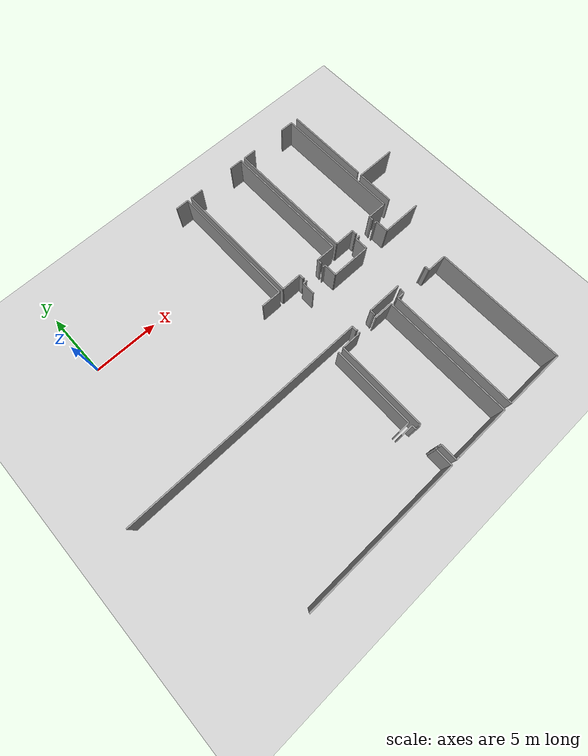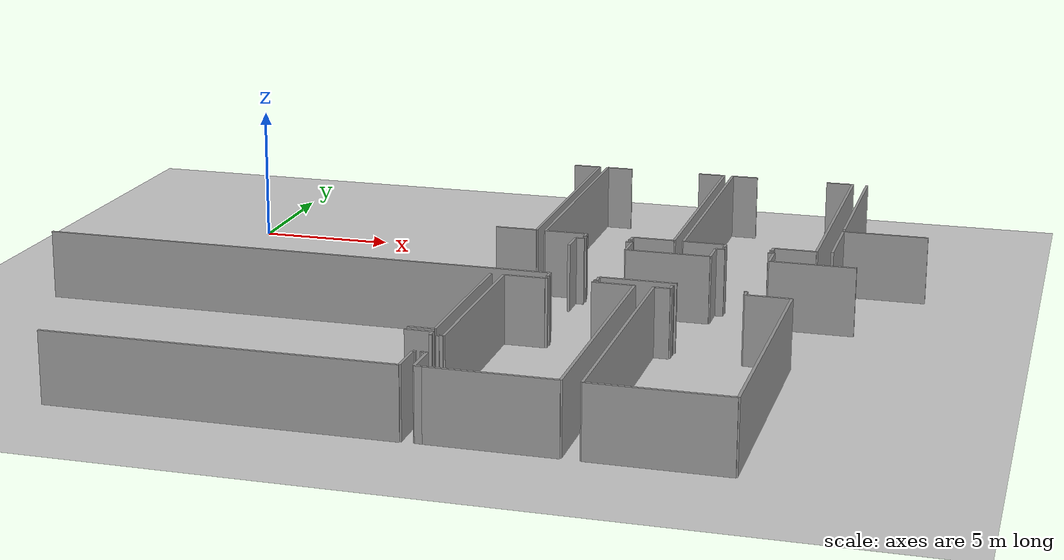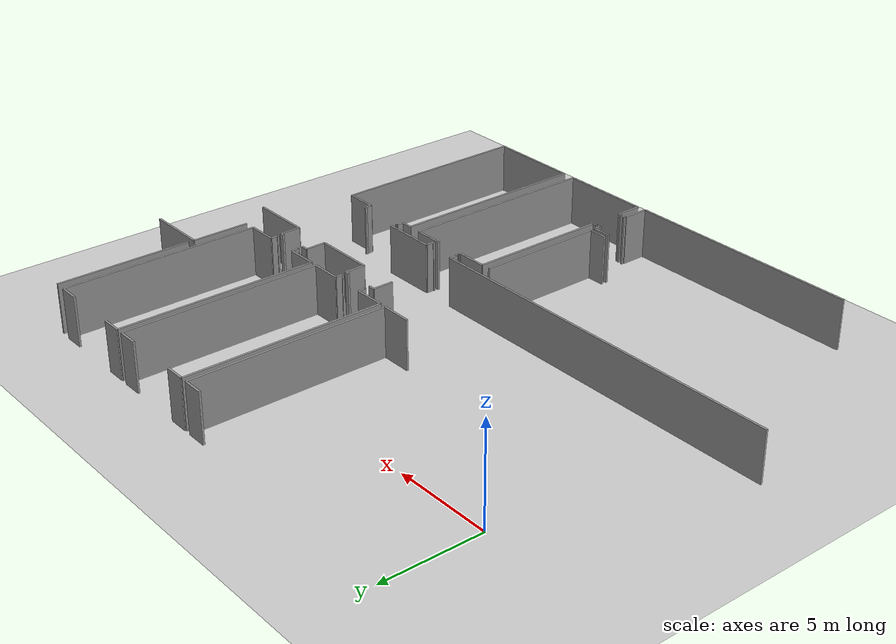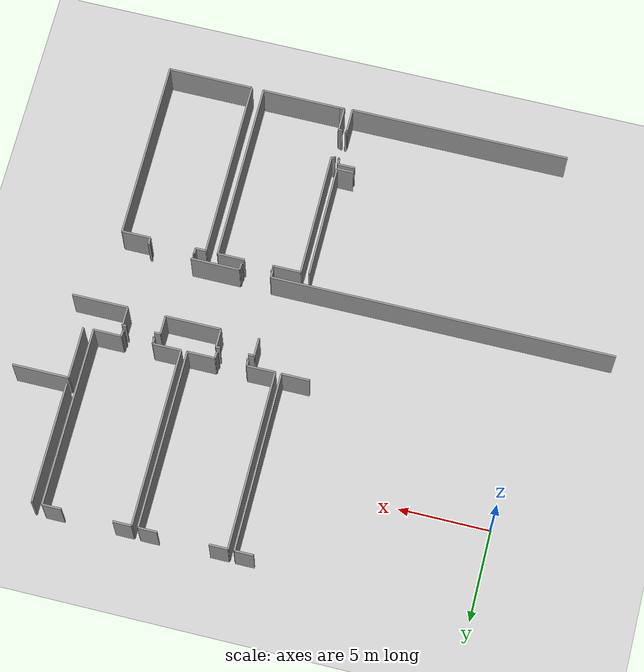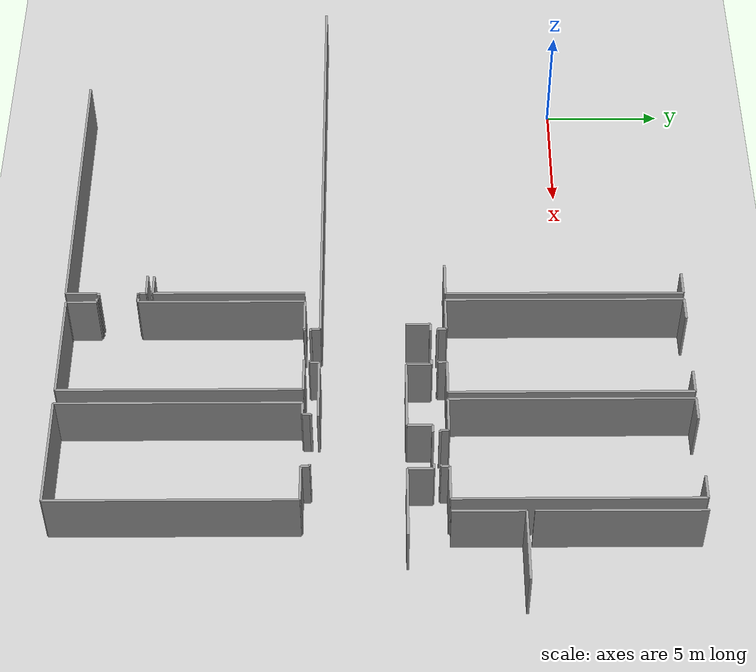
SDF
<sdf version="1.6">
 <world name="default">
  <model name="ground_plane">
   <static>1</static>
   <link name="link">
    <collision name="collision">
     <geometry><plane><normal>0 0 1</normal><size>100 100</size></plane></geometry>
     <surface><friction><ode><mu>100</mu><mu2>50</mu2></ode></friction></surface>
    </collision>
    <visual name="visual">
     <cast_shadows>0</cast_shadows>
     <geometry><plane><normal>0 0 1</normal><size>100 100</size></plane></geometry>
     <material>
      <script><uri>file://media/materials/scripts/gazebo.material</uri><name>Gazebo/Grey</name></script>
     </material>
    </visual>
   </link>
  </model>
  <model name="50055638">
   <static>1</static>
   <link name="Wall_262">
    <collision name="Wall_262_Collision">
     <geometry><box><size>1.01767296437 0.1 2.5</size></box></geometry>
     <pose>0.508836482184 0 1.25 0 0 0</pose>
    </collision>
    <visual name="Wall_262_Visual">
     <pose>0.508836482184 0 1.25 0 0 0</pose>
     <geometry><box><size>1.01767296437 0.1 2.5</size></box></geometry>
     <material>
      <script><uri>file://media/materials/scripts/gazebo.material</uri><name>Gazebo/Grey</name></script>
      <ambient>1 1 1 1</ambient>
     </material>
    </visual>
    <pose>84.9002599152 -27.5981036992 0 0 0 1.57079632679</pose>
   </link>
   <link name="Wall_263">
    <collision name="Wall_263_Collision">
     <geometry><box><size>0.328293901207 0.1 2.5</size></box></geometry>
     <pose>0.164146950603 0 1.25 0 0 0</pose>
    </collision>
    <visual name="Wall_263_Visual">
     <pose>0.164146950603 0 1.25 0 0 0</pose>
     <geometry><box><size>0.328293901207 0.1 2.5</size></box></geometry>
     <material>
      <script><uri>file://media/materials/scripts/gazebo.material</uri><name>Gazebo/Grey</name></script>
      <ambient>1 1 1 1</ambient>
     </material>
    </visual>
    <pose>84.9002599152 -26.5804307348 0 0 0 0.0</pose>
   </link>
   <link name="Wall_264">
    <collision name="Wall_264_Collision">
     <geometry><box><size>0.225344594208 0.1 2.5</size></box></geometry>
     <pose>0.112672297104 0 1.25 0 0 0</pose>
    </collision>
    <visual name="Wall_264_Visual">
     <pose>0.112672297104 0 1.25 0 0 0</pose>
     <geometry><box><size>0.225344594208 0.1 2.5</size></box></geometry>
     <material>
      <script><uri>file://media/materials/scripts/gazebo.material</uri><name>Gazebo/Grey</name></script>
      <ambient>1 1 1 1</ambient>
     </material>
    </visual>
    <pose>86.7694888758 -26.5804307348 0 0 0 0.0</pose>
   </link>
   <link name="Wall_265">
    <collision name="Wall_265_Collision">
     <geometry><box><size>1.02212139121 0.1 2.5</size></box></geometry>
     <pose>0.511060695607 0 1.25 0 0 0</pose>
    </collision>
    <visual name="Wall_265_Visual">
     <pose>0.511060695607 0 1.25 0 0 0</pose>
     <geometry><box><size>1.02212139121 0.1 2.5</size></box></geometry>
     <material>
      <script><uri>file://media/materials/scripts/gazebo.material</uri><name>Gazebo/Grey</name></script>
      <ambient>1 1 1 1</ambient>
     </material>
    </visual>
    <pose>86.99483347 -26.5804307348 0 0 0 -1.57079632679</pose>
   </link>
   <link name="Wall_266">
    <collision name="Wall_266_Collision">
     <geometry><box><size>3.04920595581 0.1 2.5</size></box></geometry>
     <pose>1.5246029779 0 1.25 0 0 0</pose>
    </collision>
    <visual name="Wall_266_Visual">
     <pose>1.5246029779 0 1.25 0 0 0</pose>
     <geometry><box><size>3.04920595581 0.1 2.5</size></box></geometry>
     <material>
      <script><uri>file://media/materials/scripts/gazebo.material</uri><name>Gazebo/Grey</name></script>
      <ambient>1 1 1 1</ambient>
     </material>
    </visual>
    <pose>86.99483347 -27.602552126 0 0 0 0.0</pose>
   </link>
   <link name="Wall_267">
    <collision name="Wall_267_Collision">
     <geometry><box><size>1.02606142642 0.1 2.5</size></box></geometry>
     <pose>0.51303071321 0 1.25 0 0 0</pose>
    </collision>
    <visual name="Wall_267_Visual">
     <pose>0.51303071321 0 1.25 0 0 0</pose>
     <geometry><box><size>1.02606142642 0.1 2.5</size></box></geometry>
     <material>
      <script><uri>file://media/materials/scripts/gazebo.material</uri><name>Gazebo/Grey</name></script>
      <ambient>1 1 1 1</ambient>
     </material>
    </visual>
    <pose>90.0440394258 -27.602552126 0 0 0 1.57079632679</pose>
   </link>
   <link name="Wall_268">
    <collision name="Wall_268_Collision">
     <geometry><box><size>0.339097223546 0.1 2.5</size></box></geometry>
     <pose>0.169548611773 0 1.25 0 0 0</pose>
    </collision>
    <visual name="Wall_268_Visual">
     <pose>0.169548611773 0 1.25 0 0 0</pose>
     <geometry><box><size>0.339097223546 0.1 2.5</size></box></geometry>
     <material>
      <script><uri>file://media/materials/scripts/gazebo.material</uri><name>Gazebo/Grey</name></script>
      <ambient>1 1 1 1</ambient>
     </material>
    </visual>
    <pose>90.0440394258 -26.5764906996 0 0 0 0.0</pose>
   </link>
   <link name="Wall_269">
    <collision name="Wall_269_Collision">
     <geometry><box><size>0.21301609695 0.1 2.5</size></box></geometry>
     <pose>0.106508048475 0 1.25 0 0 0</pose>
    </collision>
    <visual name="Wall_269_Visual">
     <pose>0.106508048475 0 1.25 0 0 0</pose>
     <geometry><box><size>0.21301609695 0.1 2.5</size></box></geometry>
     <material>
      <script><uri>file://media/materials/scripts/gazebo.material</uri><name>Gazebo/Grey</name></script>
      <ambient>1 1 1 1</ambient>
     </material>
    </visual>
    <pose>91.9240717086 -26.5764906996 0 0 0 0.0</pose>
   </link>
   <link name="Wall_270">
    <collision name="Wall_270_Collision">
     <geometry><box><size>1.03241632191 0.1 2.5</size></box></geometry>
     <pose>0.516208160957 0 1.25 0 0 0</pose>
    </collision>
    <visual name="Wall_270_Visual">
     <pose>0.516208160957 0 1.25 0 0 0</pose>
     <geometry><box><size>1.03241632191 0.1 2.5</size></box></geometry>
     <material>
      <script><uri>file://media/materials/scripts/gazebo.material</uri><name>Gazebo/Grey</name></script>
      <ambient>1 1 1 1</ambient>
     </material>
    </visual>
    <pose>92.1370878056 -26.5764906996 0 0 0 -1.57079632679</pose>
   </link>
   <link name="Wall_271">
    <collision name="Wall_271_Collision">
     <geometry><box><size>3.05899249487 0.1 2.5</size></box></geometry>
     <pose>1.52949624743 0 1.25 0 0 0</pose>
    </collision>
    <visual name="Wall_271_Visual">
     <pose>1.52949624743 0 1.25 0 0 0</pose>
     <geometry><box><size>3.05899249487 0.1 2.5</size></box></geometry>
     <material>
      <script><uri>file://media/materials/scripts/gazebo.material</uri><name>Gazebo/Grey</name></script>
      <ambient>1 1 1 1</ambient>
     </material>
    </visual>
    <pose>92.1370878056 -27.6089070215 0 0 0 0.0</pose>
   </link>
   <link name="Wall_291">
    <collision name="Wall_291_Collision">
     <geometry><box><size>2.70604159915 0.1 2.5</size></box></geometry>
     <pose>1.35302079957 0 1.25 0 0 0</pose>
    </collision>
    <visual name="Wall_291_Visual">
     <pose>1.35302079957 0 1.25 0 0 0</pose>
     <geometry><box><size>2.70604159915 0.1 2.5</size></box></geometry>
     <material>
      <script><uri>file://media/materials/scripts/gazebo.material</uri><name>Gazebo/Grey</name></script>
      <ambient>1 1 1 1</ambient>
     </material>
    </visual>
    <pose>89.5815301317 -31.1351114331 0 0 0 3.14159265359</pose>
   </link>
   <link name="Wall_292">
    <collision name="Wall_292_Collision">
     <geometry><box><size>0.386504743929 0.1 2.5</size></box></geometry>
     <pose>0.193252371965 0 1.25 0 0 0</pose>
    </collision>
    <visual name="Wall_292_Visual">
     <pose>0.193252371965 0 1.25 0 0 0</pose>
     <geometry><box><size>0.386504743929 0.1 2.5</size></box></geometry>
     <material>
      <script><uri>file://media/materials/scripts/gazebo.material</uri><name>Gazebo/Grey</name></script>
      <ambient>1 1 1 1</ambient>
     </material>
    </visual>
    <pose>86.8754885326 -31.1351114331 0 0 0 -1.57079632679</pose>
   </link>
   <link name="Wall_293">
    <collision name="Wall_293_Collision">
     <geometry><box><size>0.0939253553975 0.1 2.5</size></box></geometry>
     <pose>0.0469626776988 0 1.25 0 0 0</pose>
    </collision>
    <visual name="Wall_293_Visual">
     <pose>0.0469626776988 0 1.25 0 0 0</pose>
     <geometry><box><size>0.0939253553975 0.1 2.5</size></box></geometry>
     <material>
      <script><uri>file://media/materials/scripts/gazebo.material</uri><name>Gazebo/Grey</name></script>
      <ambient>1 1 1 1</ambient>
     </material>
    </visual>
    <pose>86.8754885326 -31.521616177 0 0 0 3.14159265359</pose>
   </link>
   <link name="Wall_294">
    <collision name="Wall_294_Collision">
     <geometry><box><size>0.1016783279 0.1 2.5</size></box></geometry>
     <pose>0.0508391639499 0 1.25 0 0 0</pose>
    </collision>
    <visual name="Wall_294_Visual">
     <pose>0.0508391639499 0 1.25 0 0 0</pose>
     <geometry><box><size>0.1016783279 0.1 2.5</size></box></geometry>
     <material>
      <script><uri>file://media/materials/scripts/gazebo.material</uri><name>Gazebo/Grey</name></script>
      <ambient>1 1 1 1</ambient>
     </material>
    </visual>
    <pose>85.2398655304 -31.521616177 0 0 0 3.14159265359</pose>
   </link>
   <link name="Wall_295">
    <collision name="Wall_295_Collision">
     <geometry><box><size>0.403535863853 0.1 2.5</size></box></geometry>
     <pose>0.201767931926 0 1.25 0 0 0</pose>
    </collision>
    <visual name="Wall_295_Visual">
     <pose>0.201767931926 0 1.25 0 0 0</pose>
     <geometry><box><size>0.403535863853 0.1 2.5</size></box></geometry>
     <material>
      <script><uri>file://media/materials/scripts/gazebo.material</uri><name>Gazebo/Grey</name></script>
      <ambient>1 1 1 1</ambient>
     </material>
    </visual>
    <pose>85.1381872025 -31.521616177 0 0 0 1.57079632679</pose>
   </link>
   <link name="Wall_296">
    <collision name="Wall_296_Collision">
     <geometry><box><size>18.8723873436 0.1 2.5</size></box></geometry>
     <pose>9.4361936718 0 1.25 0 0 0</pose>
    </collision>
    <visual name="Wall_296_Visual">
     <pose>9.4361936718 0 1.25 0 0 0</pose>
     <geometry><box><size>18.8723873436 0.1 2.5</size></box></geometry>
     <material>
      <script><uri>file://media/materials/scripts/gazebo.material</uri><name>Gazebo/Grey</name></script>
      <ambient>1 1 1 1</ambient>
     </material>
    </visual>
    <pose>85.1381872025 -31.1180803132 0 0 0 3.14159265359</pose>
   </link>
   <link name="Wall_363">
    <collision name="Wall_363_Collision">
     <geometry><box><size>1.03457698638 0.1 2.5</size></box></geometry>
     <pose>0.517288493191 0 1.25 0 0 0</pose>
    </collision>
    <visual name="Wall_363_Visual">
     <pose>0.517288493191 0 1.25 0 0 0</pose>
     <geometry><box><size>1.03457698638 0.1 2.5</size></box></geometry>
     <material>
      <script><uri>file://media/materials/scripts/gazebo.material</uri><name>Gazebo/Grey</name></script>
      <ambient>1 1 1 1</ambient>
     </material>
    </visual>
    <pose>82.2245947165 -16.0077911019 0 0 0 0.0</pose>
   </link>
   <link name="Wall_364">
    <collision name="Wall_364_Collision">
     <geometry><box><size>9.9324474609 0.1 2.5</size></box></geometry>
     <pose>4.96622373045 0 1.25 0 0 0</pose>
    </collision>
    <visual name="Wall_364_Visual">
     <pose>4.96622373045 0 1.25 0 0 0</pose>
     <geometry><box><size>9.9324474609 0.1 2.5</size></box></geometry>
     <material>
      <script><uri>file://media/materials/scripts/gazebo.material</uri><name>Gazebo/Grey</name></script>
      <ambient>1 1 1 1</ambient>
     </material>
    </visual>
    <pose>83.2591717029 -16.0077911019 0 0 0 -1.57079632679</pose>
   </link>
   <link name="Wall_365">
    <collision name="Wall_365_Collision">
     <geometry><box><size>1.54131635305 0.1 2.5</size></box></geometry>
     <pose>0.770658176526 0 1.25 0 0 0</pose>
    </collision>
    <visual name="Wall_365_Visual">
     <pose>0.770658176526 0 1.25 0 0 0</pose>
     <geometry><box><size>1.54131635305 0.1 2.5</size></box></geometry>
     <material>
      <script><uri>file://media/materials/scripts/gazebo.material</uri><name>Gazebo/Grey</name></script>
      <ambient>1 1 1 1</ambient>
     </material>
    </visual>
    <pose>83.2591717029 -25.9402385628 0 0 0 3.14159265359</pose>
   </link>
   <link name="Wall_371">
    <collision name="Wall_371_Collision">
     <geometry><box><size>9.94286948951 0.1 2.5</size></box></geometry>
     <pose>4.97143474476 0 1.25 0 0 0</pose>
    </collision>
    <visual name="Wall_371_Visual">
     <pose>4.97143474476 0 1.25 0 0 0</pose>
     <geometry><box><size>9.94286948951 0.1 2.5</size></box></geometry>
     <material>
      <script><uri>file://media/materials/scripts/gazebo.material</uri><name>Gazebo/Grey</name></script>
      <ambient>1 1 1 1</ambient>
     </material>
    </visual>
    <pose>83.5985231223 -25.9542193329 0 0 0 1.57079632679</pose>
   </link>
   <link name="Wall_372">
    <collision name="Wall_372_Collision">
     <geometry><box><size>1.01487681035 0.1 2.5</size></box></geometry>
     <pose>0.507438405175 0 1.25 0 0 0</pose>
    </collision>
    <visual name="Wall_372_Visual">
     <pose>0.507438405175 0 1.25 0 0 0</pose>
     <geometry><box><size>1.01487681035 0.1 2.5</size></box></geometry>
     <material>
      <script><uri>file://media/materials/scripts/gazebo.material</uri><name>Gazebo/Grey</name></script>
      <ambient>1 1 1 1</ambient>
     </material>
    </visual>
    <pose>83.5985231223 -16.0113498434 0 0 0 0.0</pose>
   </link>
   <link name="Wall_373">
    <collision name="Wall_373_Collision">
     <geometry><box><size>1.02212139121 0.1 2.5</size></box></geometry>
     <pose>0.511060695607 0 1.25 0 0 0</pose>
    </collision>
    <visual name="Wall_373_Visual">
     <pose>0.511060695607 0 1.25 0 0 0</pose>
     <geometry><box><size>1.02212139121 0.1 2.5</size></box></geometry>
     <material>
      <script><uri>file://media/materials/scripts/gazebo.material</uri><name>Gazebo/Grey</name></script>
      <ambient>1 1 1 1</ambient>
     </material>
    </visual>
    <pose>87.3848969554 -16.0113498434 0 0 0 0.0</pose>
   </link>
   <link name="Wall_374">
    <collision name="Wall_374_Collision">
     <geometry><box><size>9.93346424418 0.1 2.5</size></box></geometry>
     <pose>4.96673212209 0 1.25 0 0 0</pose>
    </collision>
    <visual name="Wall_374_Visual">
     <pose>4.96673212209 0 1.25 0 0 0</pose>
     <geometry><box><size>9.93346424418 0.1 2.5</size></box></geometry>
     <material>
      <script><uri>file://media/materials/scripts/gazebo.material</uri><name>Gazebo/Grey</name></script>
      <ambient>1 1 1 1</ambient>
     </material>
    </visual>
    <pose>88.4070183466 -16.0113498434 0 0 0 -1.57079632679</pose>
   </link>
   <link name="Wall_375">
    <collision name="Wall_375_Collision">
     <geometry><box><size>1.52492072268 0.1 2.5</size></box></geometry>
     <pose>0.762460361339 0 1.25 0 0 0</pose>
    </collision>
    <visual name="Wall_375_Visual">
     <pose>0.762460361339 0 1.25 0 0 0</pose>
     <geometry><box><size>1.52492072268 0.1 2.5</size></box></geometry>
     <material>
      <script><uri>file://media/materials/scripts/gazebo.material</uri><name>Gazebo/Grey</name></script>
      <ambient>1 1 1 1</ambient>
     </material>
    </visual>
    <pose>88.4070183466 -25.9448140875 0 0 0 3.14159265359</pose>
   </link>
   <link name="Wall_376">
    <collision name="Wall_376_Collision">
     <geometry><box><size>0.353077993632 0.1 2.5</size></box></geometry>
     <pose>0.176538996816 0 1.25 0 0 0</pose>
    </collision>
    <visual name="Wall_376_Visual">
     <pose>0.176538996816 0 1.25 0 0 0</pose>
     <geometry><box><size>0.353077993632 0.1 2.5</size></box></geometry>
     <material>
      <script><uri>file://media/materials/scripts/gazebo.material</uri><name>Gazebo/Grey</name></script>
      <ambient>1 1 1 1</ambient>
     </material>
    </visual>
    <pose>86.8820976239 -25.9448140875 0 0 0 -1.57079632679</pose>
   </link>
   <link name="Wall_377">
    <collision name="Wall_377_Collision">
     <geometry><box><size>0.0913833972 0.1 2.5</size></box></geometry>
     <pose>0.0456916986 0 1.25 0 0 0</pose>
    </collision>
    <visual name="Wall_377_Visual">
     <pose>0.0456916986 0 1.25 0 0 0</pose>
     <geometry><box><size>0.0913833972 0.1 2.5</size></box></geometry>
     <material>
      <script><uri>file://media/materials/scripts/gazebo.material</uri><name>Gazebo/Grey</name></script>
      <ambient>1 1 1 1</ambient>
     </material>
    </visual>
    <pose>86.8820976239 -26.2978920812 0 0 0 3.14159265359</pose>
   </link>
   <link name="Wall_378">
    <collision name="Wall_378_Collision">
     <geometry><box><size>0.097484096874 0.1 2.5</size></box></geometry>
     <pose>0.048742048437 0 1.25 0 0 0</pose>
    </collision>
    <visual name="Wall_378_Visual">
     <pose>0.048742048437 0 1.25 0 0 0</pose>
     <geometry><box><size>0.097484096874 0.1 2.5</size></box></geometry>
     <material>
      <script><uri>file://media/materials/scripts/gazebo.material</uri><name>Gazebo/Grey</name></script>
      <ambient>1 1 1 1</ambient>
     </material>
    </visual>
    <pose>85.2496520695 -26.2978920812 0 0 0 3.14159265359</pose>
   </link>
   <link name="Wall_379">
    <collision name="Wall_379_Collision">
     <geometry><box><size>0.361847749414 0.1 2.5</size></box></geometry>
     <pose>0.180923874707 0 1.25 0 0 0</pose>
    </collision>
    <visual name="Wall_379_Visual">
     <pose>0.180923874707 0 1.25 0 0 0</pose>
     <geometry><box><size>0.361847749414 0.1 2.5</size></box></geometry>
     <material>
      <script><uri>file://media/materials/scripts/gazebo.material</uri><name>Gazebo/Grey</name></script>
      <ambient>1 1 1 1</ambient>
     </material>
    </visual>
    <pose>85.1521679726 -26.2978920812 0 0 0 1.57079632679</pose>
   </link>
   <link name="Wall_380">
    <collision name="Wall_380_Collision">
     <geometry><box><size>1.55375115497 0.1 2.5</size></box></geometry>
     <pose>0.776875577484 0 1.25 0 0 0</pose>
    </collision>
    <visual name="Wall_380_Visual">
     <pose>0.776875577484 0 1.25 0 0 0</pose>
     <geometry><box><size>1.55375115497 0.1 2.5</size></box></geometry>
     <material>
      <script><uri>file://media/materials/scripts/gazebo.material</uri><name>Gazebo/Grey</name></script>
      <ambient>1 1 1 1</ambient>
     </material>
    </visual>
    <pose>85.1521679726 -25.9360443318 0 0 0 -3.12989488875</pose>
   </link>
   <link name="Wall_381">
    <collision name="Wall_381_Collision">
     <geometry><box><size>9.93282875463 0.1 2.5</size></box></geometry>
     <pose>4.96641437732 0 1.25 0 0 0</pose>
    </collision>
    <visual name="Wall_381_Visual">
     <pose>4.96641437732 0 1.25 0 0 0</pose>
     <geometry><box><size>9.93282875463 0.1 2.5</size></box></geometry>
     <material>
      <script><uri>file://media/materials/scripts/gazebo.material</uri><name>Gazebo/Grey</name></script>
      <ambient>1 1 1 1</ambient>
     </material>
    </visual>
    <pose>88.7531059552 -25.9502792977 0 0 0 1.57079632679</pose>
   </link>
   <link name="Wall_382">
    <collision name="Wall_382_Collision">
     <geometry><box><size>1.00674254412 0.1 2.5</size></box></geometry>
     <pose>0.503371272059 0 1.25 0 0 0</pose>
    </collision>
    <visual name="Wall_382_Visual">
     <pose>0.503371272059 0 1.25 0 0 0</pose>
     <geometry><box><size>1.00674254412 0.1 2.5</size></box></geometry>
     <material>
      <script><uri>file://media/materials/scripts/gazebo.material</uri><name>Gazebo/Grey</name></script>
      <ambient>1 1 1 1</ambient>
     </material>
    </visual>
    <pose>88.7531059552 -16.017450543 0 0 0 0.0</pose>
   </link>
   <link name="Wall_383">
    <collision name="Wall_383_Collision">
     <geometry><box><size>1.02466334941 0.1 2.5</size></box></geometry>
     <pose>0.512331674706 0 1.25 0 0 0</pose>
    </collision>
    <visual name="Wall_383_Visual">
     <pose>0.512331674706 0 1.25 0 0 0</pose>
     <geometry><box><size>1.02466334941 0.1 2.5</size></box></geometry>
     <material>
      <script><uri>file://media/materials/scripts/gazebo.material</uri><name>Gazebo/Grey</name></script>
      <ambient>1 1 1 1</ambient>
     </material>
    </visual>
    <pose>92.5357939489 -16.017450543 0 0 0 0.0</pose>
   </link>
   <link name="Wall_384">
    <collision name="Wall_384_Collision">
     <geometry><box><size>9.93829396476 0.1 2.5</size></box></geometry>
     <pose>4.96914698238 0 1.25 0 0 0</pose>
    </collision>
    <visual name="Wall_384_Visual">
     <pose>4.96914698238 0 1.25 0 0 0</pose>
     <geometry><box><size>9.93829396476 0.1 2.5</size></box></geometry>
     <material>
      <script><uri>file://media/materials/scripts/gazebo.material</uri><name>Gazebo/Grey</name></script>
      <ambient>1 1 1 1</ambient>
     </material>
    </visual>
    <pose>93.5604572983 -16.017450543 0 0 0 -1.57079632679</pose>
   </link>
   <link name="Wall_385">
    <collision name="Wall_385_Collision">
     <geometry><box><size>1.53241949936 0.1 2.5</size></box></geometry>
     <pose>0.766209749681 0 1.25 0 0 0</pose>
    </collision>
    <visual name="Wall_385_Visual">
     <pose>0.766209749681 0 1.25 0 0 0</pose>
     <geometry><box><size>1.53241949936 0.1 2.5</size></box></geometry>
     <material>
      <script><uri>file://media/materials/scripts/gazebo.material</uri><name>Gazebo/Grey</name></script>
      <ambient>1 1 1 1</ambient>
     </material>
    </visual>
    <pose>93.5604572983 -25.9557445078 0 0 0 3.14159265359</pose>
   </link>
   <link name="Wall_386">
    <collision name="Wall_386_Collision">
     <geometry><box><size>0.33515718834 0.1 2.5</size></box></geometry>
     <pose>0.16757859417 0 1.25 0 0 0</pose>
    </collision>
    <visual name="Wall_386_Visual">
     <pose>0.16757859417 0 1.25 0 0 0</pose>
     <geometry><box><size>0.33515718834 0.1 2.5</size></box></geometry>
     <material>
      <script><uri>file://media/materials/scripts/gazebo.material</uri><name>Gazebo/Grey</name></script>
      <ambient>1 1 1 1</ambient>
     </material>
    </visual>
    <pose>92.0280377989 -25.9557445078 0 0 0 -1.57079632679</pose>
   </link>
   <link name="Wall_387">
    <collision name="Wall_387_Collision">
     <geometry><box><size>0.0879517536334 0.1 2.5</size></box></geometry>
     <pose>0.0439758768167 0 1.25 0 0 0</pose>
    </collision>
    <visual name="Wall_387_Visual">
     <pose>0.0439758768167 0 1.25 0 0 0</pose>
     <geometry><box><size>0.0879517536334 0.1 2.5</size></box></geometry>
     <material>
      <script><uri>file://media/materials/scripts/gazebo.material</uri><name>Gazebo/Grey</name></script>
      <ambient>1 1 1 1</ambient>
     </material>
    </visual>
    <pose>92.0280377989 -26.2909016961 0 0 0 3.14159265359</pose>
   </link>
   <link name="Wall_388">
    <collision name="Wall_388_Collision">
     <geometry><box><size>0.0955776282259 0.1 2.5</size></box></geometry>
     <pose>0.0477888141129 0 1.25 0 0 0</pose>
    </collision>
    <visual name="Wall_388_Visual">
     <pose>0.0477888141129 0 1.25 0 0 0</pose>
     <geometry><box><size>0.0955776282259 0.1 2.5</size></box></geometry>
     <material>
      <script><uri>file://media/materials/scripts/gazebo.material</uri><name>Gazebo/Grey</name></script>
      <ambient>1 1 1 1</ambient>
     </material>
    </visual>
    <pose>90.3971174194 -26.2909016961 0 0 0 3.14159265359</pose>
   </link>
   <link name="Wall_389">
    <collision name="Wall_389_Collision">
     <geometry><box><size>0.346087608589 0.1 2.5</size></box></geometry>
     <pose>0.173043804295 0 1.25 0 0 0</pose>
    </collision>
    <visual name="Wall_389_Visual">
     <pose>0.173043804295 0 1.25 0 0 0</pose>
     <geometry><box><size>0.346087608589 0.1 2.5</size></box></geometry>
     <material>
      <script><uri>file://media/materials/scripts/gazebo.material</uri><name>Gazebo/Grey</name></script>
      <ambient>1 1 1 1</ambient>
     </material>
    </visual>
    <pose>90.3015397912 -26.2909016961 0 0 0 1.57079632679</pose>
   </link>
   <link name="Wall_390">
    <collision name="Wall_390_Collision">
     <geometry><box><size>1.54844348073 0.1 2.5</size></box></geometry>
     <pose>0.774221740364 0 1.25 0 0 0</pose>
    </collision>
    <visual name="Wall_390_Visual">
     <pose>0.774221740364 0 1.25 0 0 0</pose>
     <geometry><box><size>1.54844348073 0.1 2.5</size></box></geometry>
     <material>
      <script><uri>file://media/materials/scripts/gazebo.material</uri><name>Gazebo/Grey</name></script>
      <ambient>1 1 1 1</ambient>
     </material>
    </visual>
    <pose>90.3015397912 -25.9448140875 0 0 0 -3.13806315991</pose>
   </link>
   <link name="Wall_423">
    <collision name="Wall_423_Collision">
     <geometry><box><size>0.955649184349 0.1 2.5</size></box></geometry>
     <pose>0.477824592175 0 1.25 0 0 0</pose>
    </collision>
    <visual name="Wall_423_Visual">
     <pose>0.477824592175 0 1.25 0 0 0</pose>
     <geometry><box><size>0.955649184349 0.1 2.5</size></box></geometry>
     <material>
      <script><uri>file://media/materials/scripts/gazebo.material</uri><name>Gazebo/Grey</name></script>
      <ambient>1 1 1 1</ambient>
     </material>
    </visual>
    <pose>82.261961502 -38.4014260385 0 0 0 0.0</pose>
   </link>
   <link name="Wall_424">
    <collision name="Wall_424_Collision">
     <geometry><box><size>0.291689703163 0.1 2.5</size></box></geometry>
     <pose>0.145844851581 0 1.25 0 0 0</pose>
    </collision>
    <visual name="Wall_424_Visual">
     <pose>0.145844851581 0 1.25 0 0 0</pose>
     <geometry><box><size>0.291689703163 0.1 2.5</size></box></geometry>
     <material>
      <script><uri>file://media/materials/scripts/gazebo.material</uri><name>Gazebo/Grey</name></script>
      <ambient>1 1 1 1</ambient>
     </material>
    </visual>
    <pose>83.2176106864 -38.4014260385 0 0 0 -1.57079632679</pose>
   </link>
   <link name="Wall_425">
    <collision name="Wall_425_Collision">
     <geometry><box><size>0.0277073443527 0.1 2.5</size></box></geometry>
     <pose>0.0138536721764 0 1.25 0 0 0</pose>
    </collision>
    <visual name="Wall_425_Visual">
     <pose>0.0138536721764 0 1.25 0 0 0</pose>
     <geometry><box><size>0.0277073443527 0.1 2.5</size></box></geometry>
     <material>
      <script><uri>file://media/materials/scripts/gazebo.material</uri><name>Gazebo/Grey</name></script>
      <ambient>1 1 1 1</ambient>
     </material>
    </visual>
    <pose>83.2176106864 -38.6931157417 0 0 0 0.0</pose>
   </link>
   <link name="Wall_426">
    <collision name="Wall_426_Collision">
     <geometry><box><size>0.0930356700284 0.1 2.5</size></box></geometry>
     <pose>0.0465178350142 0 1.25 0 0 0</pose>
    </collision>
    <visual name="Wall_426_Visual">
     <pose>0.0465178350142 0 1.25 0 0 0</pose>
     <geometry><box><size>0.0930356700284 0.1 2.5</size></box></geometry>
     <material>
      <script><uri>file://media/materials/scripts/gazebo.material</uri><name>Gazebo/Grey</name></script>
      <ambient>1 1 1 1</ambient>
     </material>
    </visual>
    <pose>83.2453180307 -38.6931157417 0 0 0 -1.57079632679</pose>
   </link>
   <link name="Wall_427">
    <collision name="Wall_427_Collision">
     <geometry><box><size>0.122522385119 0.1 2.5</size></box></geometry>
     <pose>0.0612611925597 0 1.25 0 0 0</pose>
    </collision>
    <visual name="Wall_427_Visual">
     <pose>0.0612611925597 0 1.25 0 0 0</pose>
     <geometry><box><size>0.122522385119 0.1 2.5</size></box></geometry>
     <material>
      <script><uri>file://media/materials/scripts/gazebo.material</uri><name>Gazebo/Grey</name></script>
      <ambient>1 1 1 1</ambient>
     </material>
    </visual>
    <pose>83.2453180307 -40.3275948627 0 0 0 -1.57079632679</pose>
   </link>
   <link name="Wall_428">
    <collision name="Wall_428_Collision">
     <geometry><box><size>0.0409255269797 0.1 2.5</size></box></geometry>
     <pose>0.0204627634899 0 1.25 0 0 0</pose>
    </collision>
    <visual name="Wall_428_Visual">
     <pose>0.0204627634899 0 1.25 0 0 0</pose>
     <geometry><box><size>0.0409255269797 0.1 2.5</size></box></geometry>
     <material>
      <script><uri>file://media/materials/scripts/gazebo.material</uri><name>Gazebo/Grey</name></script>
      <ambient>1 1 1 1</ambient>
     </material>
    </visual>
    <pose>83.2453180307 -40.4501172478 0 0 0 3.14159265359</pose>
   </link>
   <link name="Wall_429">
    <collision name="Wall_429_Collision">
     <geometry><box><size>1.29906773683 0.1 2.5</size></box></geometry>
     <pose>0.649533868416 0 1.25 0 0 0</pose>
    </collision>
    <visual name="Wall_429_Visual">
     <pose>0.649533868416 0 1.25 0 0 0</pose>
     <geometry><box><size>1.29906773683 0.1 2.5</size></box></geometry>
     <material>
      <script><uri>file://media/materials/scripts/gazebo.material</uri><name>Gazebo/Grey</name></script>
      <ambient>1 1 1 1</ambient>
     </material>
    </visual>
    <pose>83.2043925038 -40.4501172478 0 0 0 -1.57079632679</pose>
   </link>
   <link name="Wall_430">
    <collision name="Wall_430_Collision">
     <geometry><box><size>12.0670568572 0.1 2.5</size></box></geometry>
     <pose>6.03352842862 0 1.25 0 0 0</pose>
    </collision>
    <visual name="Wall_430_Visual">
     <pose>6.03352842862 0 1.25 0 0 0</pose>
     <geometry><box><size>12.0670568572 0.1 2.5</size></box></geometry>
     <material>
      <script><uri>file://media/materials/scripts/gazebo.material</uri><name>Gazebo/Grey</name></script>
      <ambient>1 1 1 1</ambient>
     </material>
    </visual>
    <pose>83.2043925038 -41.7491849847 0 0 0 3.14159265359</pose>
   </link>
   <link name="Wall_434">
    <collision name="Wall_434_Collision">
     <geometry><box><size>6.34930318571 0.1 2.5</size></box></geometry>
     <pose>3.17465159285 0 1.25 0 0 0</pose>
    </collision>
    <visual name="Wall_434_Visual">
     <pose>3.17465159285 0 1.25 0 0 0</pose>
     <geometry><box><size>6.34930318571 0.1 2.5</size></box></geometry>
     <material>
      <script><uri>file://media/materials/scripts/gazebo.material</uri><name>Gazebo/Grey</name></script>
      <ambient>1 1 1 1</ambient>
     </material>
    </visual>
    <pose>83.1924453002 -31.7789894445 0 0 0 -1.57079632679</pose>
   </link>
   <link name="Wall_435">
    <collision name="Wall_435_Collision">
     <geometry><box><size>0.919299182125 0.1 2.5</size></box></geometry>
     <pose>0.459649591062 0 1.25 0 0 0</pose>
    </collision>
    <visual name="Wall_435_Visual">
     <pose>0.459649591062 0 1.25 0 0 0</pose>
     <geometry><box><size>0.919299182125 0.1 2.5</size></box></geometry>
     <material>
      <script><uri>file://media/materials/scripts/gazebo.material</uri><name>Gazebo/Grey</name></script>
      <ambient>1 1 1 1</ambient>
     </material>
    </visual>
    <pose>83.1924453002 -38.1282926302 0 0 0 3.14159265359</pose>
   </link>
   <link name="Wall_437">
    <collision name="Wall_437_Collision">
     <geometry><box><size>0.248476413805 0.1 2.5</size></box></geometry>
     <pose>0.124238206903 0 1.25 0 0 0</pose>
    </collision>
    <visual name="Wall_437_Visual">
     <pose>0.124238206903 0 1.25 0 0 0</pose>
     <geometry><box><size>0.248476413805 0.1 2.5</size></box></geometry>
     <material>
      <script><uri>file://media/materials/scripts/gazebo.material</uri><name>Gazebo/Grey</name></script>
      <ambient>1 1 1 1</ambient>
     </material>
    </visual>
    <pose>83.9110568827 -41.7030484434 0 0 0 3.14159265359</pose>
   </link>
   <link name="Wall_438">
    <collision name="Wall_438_Collision">
     <geometry><box><size>1.26919972801 0.1 2.5</size></box></geometry>
     <pose>0.634599864005 0 1.25 0 0 0</pose>
    </collision>
    <visual name="Wall_438_Visual">
     <pose>0.634599864005 0 1.25 0 0 0</pose>
     <geometry><box><size>1.26919972801 0.1 2.5</size></box></geometry>
     <material>
      <script><uri>file://media/materials/scripts/gazebo.material</uri><name>Gazebo/Grey</name></script>
      <ambient>1 1 1 1</ambient>
     </material>
    </visual>
    <pose>83.6625804689 -41.7030484434 0 0 0 1.57079632679</pose>
   </link>
   <link name="Wall_439">
    <collision name="Wall_439_Collision">
     <geometry><box><size>0.180097738293 0.1 2.5</size></box></geometry>
     <pose>0.0900488691464 0 1.25 0 0 0</pose>
    </collision>
    <visual name="Wall_439_Visual">
     <pose>0.0900488691464 0 1.25 0 0 0</pose>
     <geometry><box><size>0.180097738293 0.1 2.5</size></box></geometry>
     <material>
      <script><uri>file://media/materials/scripts/gazebo.material</uri><name>Gazebo/Grey</name></script>
      <ambient>1 1 1 1</ambient>
     </material>
    </visual>
    <pose>83.6625804689 -40.4338487154 0 0 0 3.14159265359</pose>
   </link>
   <link name="Wall_440">
    <collision name="Wall_440_Collision">
     <geometry><box><size>0.0874433619939 0.1 2.5</size></box></geometry>
     <pose>0.043721680997 0 1.25 0 0 0</pose>
    </collision>
    <visual name="Wall_440_Visual">
     <pose>0.043721680997 0 1.25 0 0 0</pose>
     <geometry><box><size>0.0874433619939 0.1 2.5</size></box></geometry>
     <material>
      <script><uri>file://media/materials/scripts/gazebo.material</uri><name>Gazebo/Grey</name></script>
      <ambient>1 1 1 1</ambient>
     </material>
    </visual>
    <pose>83.4824827306 -40.4338487154 0 0 0 1.57079632679</pose>
   </link>
   <link name="Wall_441">
    <collision name="Wall_441_Collision">
     <geometry><box><size>0.0902395160112 0.1 2.5</size></box></geometry>
     <pose>0.0451197580056 0 1.25 0 0 0</pose>
    </collision>
    <visual name="Wall_441_Visual">
     <pose>0.0451197580056 0 1.25 0 0 0</pose>
     <geometry><box><size>0.0902395160112 0.1 2.5</size></box></geometry>
     <material>
      <script><uri>file://media/materials/scripts/gazebo.material</uri><name>Gazebo/Grey</name></script>
      <ambient>1 1 1 1</ambient>
     </material>
    </visual>
    <pose>83.4824827306 -38.7944127759 0 0 0 1.57079632679</pose>
   </link>
   <link name="Wall_442">
    <collision name="Wall_442_Collision">
     <geometry><box><size>0.173869940709 0.1 2.5</size></box></geometry>
     <pose>0.0869349703544 0 1.25 0 0 0</pose>
    </collision>
    <visual name="Wall_442_Visual">
     <pose>0.0869349703544 0 1.25 0 0 0</pose>
     <geometry><box><size>0.173869940709 0.1 2.5</size></box></geometry>
     <material>
      <script><uri>file://media/materials/scripts/gazebo.material</uri><name>Gazebo/Grey</name></script>
      <ambient>1 1 1 1</ambient>
     </material>
    </visual>
    <pose>83.4824827306 -38.7041732599 0 0 0 0.0</pose>
   </link>
   <link name="Wall_443">
    <collision name="Wall_443_Collision">
     <geometry><box><size>6.92594640281 0.1 2.5</size></box></geometry>
     <pose>3.46297320141 0 1.25 0 0 0</pose>
    </collision>
    <visual name="Wall_443_Visual">
     <pose>3.46297320141 0 1.25 0 0 0</pose>
     <geometry><box><size>6.92594640281 0.1 2.5</size></box></geometry>
     <material>
      <script><uri>file://media/materials/scripts/gazebo.material</uri><name>Gazebo/Grey</name></script>
      <ambient>1 1 1 1</ambient>
     </material>
    </visual>
    <pose>83.6563526713 -38.7041732599 0 0 0 1.57079632679</pose>
   </link>
   <link name="Wall_444">
    <collision name="Wall_444_Collision">
     <geometry><box><size>1.47662351693 0.1 2.5</size></box></geometry>
     <pose>0.738311758463 0 1.25 0 0 0</pose>
    </collision>
    <visual name="Wall_444_Visual">
     <pose>0.738311758463 0 1.25 0 0 0</pose>
     <geometry><box><size>1.47662351693 0.1 2.5</size></box></geometry>
     <material>
      <script><uri>file://media/materials/scripts/gazebo.material</uri><name>Gazebo/Grey</name></script>
      <ambient>1 1 1 1</ambient>
     </material>
    </visual>
    <pose>83.6563526713 -31.7782268571 0 0 0 0.0</pose>
   </link>
   <link name="Wall_445">
    <collision name="Wall_445_Collision">
     <geometry><box><size>0.0249111903355 0.1 2.5</size></box></geometry>
     <pose>0.0124555951677 0 1.25 0 0 0</pose>
    </collision>
    <visual name="Wall_445_Visual">
     <pose>0.0124555951677 0 1.25 0 0 0</pose>
     <geometry><box><size>0.0249111903355 0.1 2.5</size></box></geometry>
     <material>
      <script><uri>file://media/materials/scripts/gazebo.material</uri><name>Gazebo/Grey</name></script>
      <ambient>1 1 1 1</ambient>
     </material>
    </visual>
    <pose>85.1329761882 -31.7782268571 0 0 0 1.57079632679</pose>
   </link>
   <link name="Wall_446">
    <collision name="Wall_446_Collision">
     <geometry><box><size>0.0913833972 0.1 2.5</size></box></geometry>
     <pose>0.0456916986 0 1.25 0 0 0</pose>
    </collision>
    <visual name="Wall_446_Visual">
     <pose>0.0456916986 0 1.25 0 0 0</pose>
     <geometry><box><size>0.0913833972 0.1 2.5</size></box></geometry>
     <material>
      <script><uri>file://media/materials/scripts/gazebo.material</uri><name>Gazebo/Grey</name></script>
      <ambient>1 1 1 1</ambient>
     </material>
    </visual>
    <pose>85.1329761882 -31.7533156667 0 0 0 0.0</pose>
   </link>
   <link name="Wall_447">
    <collision name="Wall_447_Collision">
     <geometry><box><size>1.49073138492 0.1 2.5</size></box></geometry>
     <pose>0.745365692461 0 1.25 0 0 0</pose>
    </collision>
    <visual name="Wall_447_Visual">
     <pose>0.745365692461 0 1.25 0 0 0</pose>
     <geometry><box><size>1.49073138492 0.1 2.5</size></box></geometry>
     <material>
      <script><uri>file://media/materials/scripts/gazebo.material</uri><name>Gazebo/Grey</name></script>
      <ambient>1 1 1 1</ambient>
     </material>
    </visual>
    <pose>86.7539829308 -31.7533156667 0 0 0 0.0</pose>
   </link>
   <link name="Wall_448">
    <collision name="Wall_448_Collision">
     <geometry><box><size>9.963332253 0.1 2.5</size></box></geometry>
     <pose>4.9816661265 0 1.25 0 0 0</pose>
    </collision>
    <visual name="Wall_448_Visual">
     <pose>4.9816661265 0 1.25 0 0 0</pose>
     <geometry><box><size>9.963332253 0.1 2.5</size></box></geometry>
     <material>
      <script><uri>file://media/materials/scripts/gazebo.material</uri><name>Gazebo/Grey</name></script>
      <ambient>1 1 1 1</ambient>
     </material>
    </visual>
    <pose>88.2447143157 -31.7533156667 0 0 0 -1.57079632679</pose>
   </link>
   <link name="Wall_449">
    <collision name="Wall_449_Collision">
     <geometry><box><size>4.33367877125 0.1 2.5</size></box></geometry>
     <pose>2.16683938563 0 1.25 0 0 0</pose>
    </collision>
    <visual name="Wall_449_Visual">
     <pose>2.16683938563 0 1.25 0 0 0</pose>
     <geometry><box><size>4.33367877125 0.1 2.5</size></box></geometry>
     <material>
      <script><uri>file://media/materials/scripts/gazebo.material</uri><name>Gazebo/Grey</name></script>
      <ambient>1 1 1 1</ambient>
     </material>
    </visual>
    <pose>88.2447143157 -41.7166479197 0 0 0 3.1384545579</pose>
   </link>
   <link name="Wall_450">
    <collision name="Wall_450_Collision">
     <geometry><box><size>9.96498452583 0.1 2.5</size></box></geometry>
     <pose>4.98249226291 0 1.25 0 0 0</pose>
    </collision>
    <visual name="Wall_450_Visual">
     <pose>4.98249226291 0 1.25 0 0 0</pose>
     <geometry><box><size>9.96498452583 0.1 2.5</size></box></geometry>
     <material>
      <script><uri>file://media/materials/scripts/gazebo.material</uri><name>Gazebo/Grey</name></script>
      <ambient>1 1 1 1</ambient>
     </material>
    </visual>
    <pose>88.9080383073 -41.7301202982 0 0 0 1.57079632679</pose>
   </link>
   <link name="Wall_451">
    <collision name="Wall_451_Collision">
     <geometry><box><size>0.575118042184 0.1 2.5</size></box></geometry>
     <pose>0.287559021092 0 1.25 0 0 0</pose>
    </collision>
    <visual name="Wall_451_Visual">
     <pose>0.287559021092 0 1.25 0 0 0</pose>
     <geometry><box><size>0.575118042184 0.1 2.5</size></box></geometry>
     <material>
      <script><uri>file://media/materials/scripts/gazebo.material</uri><name>Gazebo/Grey</name></script>
      <ambient>1 1 1 1</ambient>
     </material>
    </visual>
    <pose>88.9080383073 -31.7651357723 0 0 0 0.0</pose>
   </link>
   <link name="Wall_452">
    <collision name="Wall_452_Collision">
     <geometry><box><size>0.33490299252 0.1 2.5</size></box></geometry>
     <pose>0.16745149626 0 1.25 0 0 0</pose>
    </collision>
    <visual name="Wall_452_Visual">
     <pose>0.16745149626 0 1.25 0 0 0</pose>
     <geometry><box><size>0.33490299252 0.1 2.5</size></box></geometry>
     <material>
      <script><uri>file://media/materials/scripts/gazebo.material</uri><name>Gazebo/Grey</name></script>
      <ambient>1 1 1 1</ambient>
     </material>
    </visual>
    <pose>89.4831563495 -31.7651357723 0 0 0 1.57079632679</pose>
   </link>
   <link name="Wall_453">
    <collision name="Wall_453_Collision">
     <geometry><box><size>0.0631676612078 0.1 2.5</size></box></geometry>
     <pose>0.0315838306039 0 1.25 0 0 0</pose>
    </collision>
    <visual name="Wall_453_Visual">
     <pose>0.0315838306039 0 1.25 0 0 0</pose>
     <geometry><box><size>0.0631676612078 0.1 2.5</size></box></geometry>
     <material>
      <script><uri>file://media/materials/scripts/gazebo.material</uri><name>Gazebo/Grey</name></script>
      <ambient>1 1 1 1</ambient>
     </material>
    </visual>
    <pose>89.4831563495 -31.4302327798 0 0 0 0.0</pose>
   </link>
   <link name="Wall_454">
    <collision name="Wall_454_Collision">
     <geometry><box><size>0.0955776282259 0.1 2.5</size></box></geometry>
     <pose>0.047788814113 0 1.25 0 0 0</pose>
    </collision>
    <visual name="Wall_454_Visual">
     <pose>0.047788814113 0 1.25 0 0 0</pose>
     <geometry><box><size>0.0955776282259 0.1 2.5</size></box></geometry>
     <material>
      <script><uri>file://media/materials/scripts/gazebo.material</uri><name>Gazebo/Grey</name></script>
      <ambient>1 1 1 1</ambient>
     </material>
    </visual>
    <pose>91.9186064985 -31.4302327798 0 0 0 0.0</pose>
   </link>
   <link name="Wall_455">
    <collision name="Wall_455_Collision">
     <geometry><box><size>0.343545650392 0.1 2.5</size></box></geometry>
     <pose>0.171772825196 0 1.25 0 0 0</pose>
    </collision>
    <visual name="Wall_455_Visual">
     <pose>0.171772825196 0 1.25 0 0 0</pose>
     <geometry><box><size>0.343545650392 0.1 2.5</size></box></geometry>
     <material>
      <script><uri>file://media/materials/scripts/gazebo.material</uri><name>Gazebo/Grey</name></script>
      <ambient>1 1 1 1</ambient>
     </material>
    </visual>
    <pose>92.0141841267 -31.4302327798 0 0 0 -1.57079632679</pose>
   </link>
   <link name="Wall_456">
    <collision name="Wall_456_Collision">
     <geometry><box><size>1.56991338277 0.1 2.5</size></box></geometry>
     <pose>0.784956691387 0 1.25 0 0 0</pose>
    </collision>
    <visual name="Wall_456_Visual">
     <pose>0.784956691387 0 1.25 0 0 0</pose>
     <geometry><box><size>1.56991338277 0.1 2.5</size></box></geometry>
     <material>
      <script><uri>file://media/materials/scripts/gazebo.material</uri><name>Gazebo/Grey</name></script>
      <ambient>1 1 1 1</ambient>
     </material>
    </visual>
    <pose>92.0141841267 -31.7737784302 0 0 0 0.0</pose>
   </link>
   <link name="Wall_457">
    <collision name="Wall_457_Collision">
     <geometry><box><size>9.96752648403 0.1 2.5</size></box></geometry>
     <pose>4.98376324201 0 1.25 0 0 0</pose>
    </collision>
    <visual name="Wall_457_Visual">
     <pose>4.98376324201 0 1.25 0 0 0</pose>
     <geometry><box><size>9.96752648403 0.1 2.5</size></box></geometry>
     <material>
      <script><uri>file://media/materials/scripts/gazebo.material</uri><name>Gazebo/Grey</name></script>
      <ambient>1 1 1 1</ambient>
     </material>
    </visual>
    <pose>93.5840975095 -31.7737784302 0 0 0 -1.57079632679</pose>
   </link>
   <link name="Wall_458">
    <collision name="Wall_458_Collision">
     <geometry><box><size>4.67607257837 0.1 2.5</size></box></geometry>
     <pose>2.33803628918 0 1.25 0 0 0</pose>
    </collision>
    <visual name="Wall_458_Visual">
     <pose>2.33803628918 0 1.25 0 0 0</pose>
     <geometry><box><size>4.67607257837 0.1 2.5</size></box></geometry>
     <material>
      <script><uri>file://media/materials/scripts/gazebo.material</uri><name>Gazebo/Grey</name></script>
      <ambient>1 1 1 1</ambient>
     </material>
    </visual>
    <pose>93.5840975095 -41.7413049142 0 0 0 3.13920076883</pose>
   </link>
   <link name="Wall_542">
    <collision name="Wall_542_Collision">
     <geometry><box><size>6.72055618045 0.1 2.5</size></box></geometry>
     <pose>3.36027809023 0 1.25 0 0 0</pose>
    </collision>
    <visual name="Wall_542_Visual">
     <pose>3.36027809023 0 1.25 0 0 0</pose>
     <geometry><box><size>6.72055618045 0.1 2.5</size></box></geometry>
     <material>
      <script><uri>file://media/materials/scripts/gazebo.material</uri><name>Gazebo/Grey</name></script>
      <ambient>1 1 1 1</ambient>
     </material>
    </visual>
    <pose>94.1212132766 -22.7352105695 0 0 0 1.57079632679</pose>
   </link>
   <link name="Wall_563">
    <collision name="Wall_563_Collision">
     <geometry><box><size>2.90329755527 0.1 2.5</size></box></geometry>
     <pose>1.45164877764 0 1.25 0 0 0</pose>
    </collision>
    <visual name="Wall_563_Visual">
     <pose>1.45164877764 0 1.25 0 0 0</pose>
     <geometry><box><size>2.90329755527 0.1 2.5</size></box></geometry>
     <material>
      <script><uri>file://media/materials/scripts/gazebo.material</uri><name>Gazebo/Grey</name></script>
      <ambient>1 1 1 1</ambient>
     </material>
    </visual>
    <pose>94.1185442205 -25.9418908356 0 0 0 1.57079632679</pose>
   </link>
   <link name="Wall_564">
    <collision name="Wall_564_Collision">
     <geometry><box><size>3.08009074791 0.1 2.5</size></box></geometry>
     <pose>1.54004537395 0 1.25 0 0 0</pose>
    </collision>
    <visual name="Wall_564_Visual">
     <pose>1.54004537395 0 1.25 0 0 0</pose>
     <geometry><box><size>3.08009074791 0.1 2.5</size></box></geometry>
     <material>
      <script><uri>file://media/materials/scripts/gazebo.material</uri><name>Gazebo/Grey</name></script>
      <ambient>1 1 1 1</ambient>
     </material>
    </visual>
    <pose>94.1185442205 -23.0385932803 0 0 0 0.0</pose>
   </link>
   <pose>-70.65 20.8744774687 0 0 0 0</pose>
  </model>
 </world>
</sdf>
